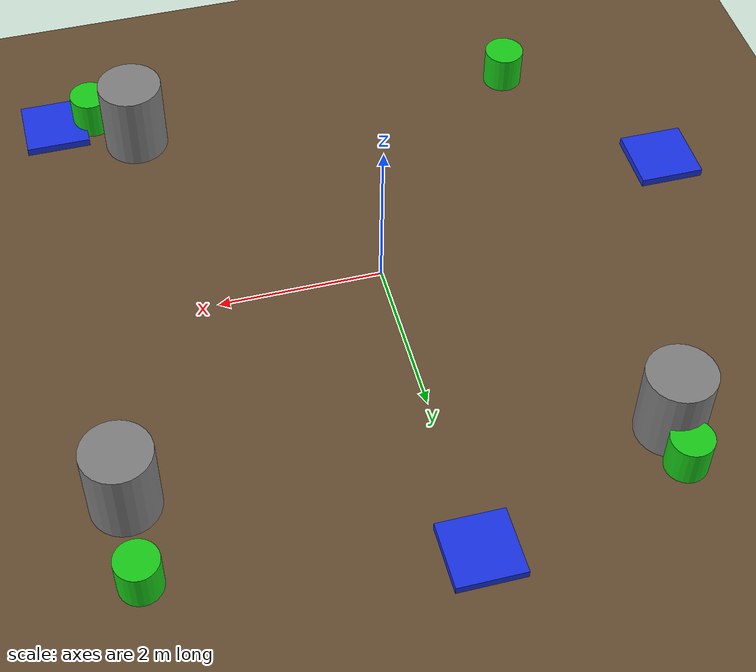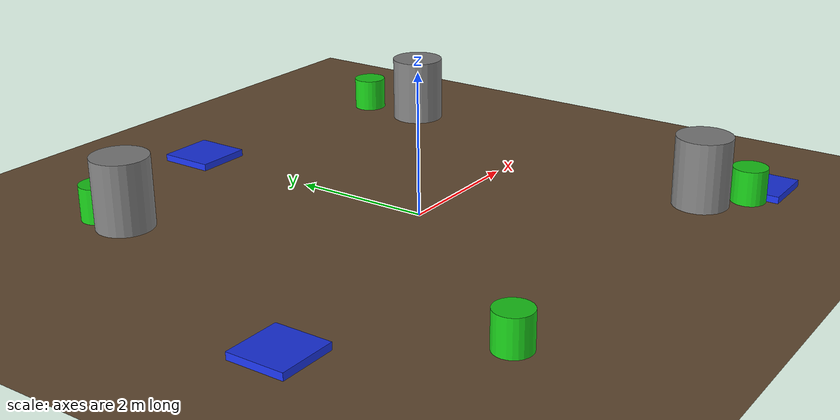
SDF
<sdf version='1.7'>
  <world name='foraging'>

    <light name='sun' type='directional'>
      <pose>0 0 10 0 0 0</pose>
      <diffuse>0.8 0.8 0.8 1</diffuse>
      <specular>0.2 0.2 0.2 1</specular>
      <direction>0 0.1 -0.9</direction>
      <cast_shadows>1</cast_shadows>
    </light>

    <model name='ground_plane'>
      <static>1</static>
      <link name='link'>
        <collision name='collision'>
          <geometry>
            <plane>
              <normal>0 0 1</normal>
              <size>20 20</size>
            </plane>
          </geometry>
        </collision>
        <visual name='visual'>
          <geometry>
            <plane>
              <normal>0 0 1</normal>
              <size>20 20</size>
            </plane>
          </geometry>
          <material>
            <ambient>0.4 0.3 0.2 1</ambient>
            <diffuse>0.4 0.3 0.2 1</diffuse>
          </material>
        </visual>
      </link>
    </model>

    <model name='food_0'>
      <pose>3.5 3.5 0.25 0 0 0</pose>
      <static>1</static>
      <link name='link'>
        <visual name='v'>
          <geometry><cylinder><radius>0.25</radius><length>0.5</length></cylinder></geometry>
          <material>
            <ambient>0.1 0.8 0.1 1</ambient>
            <diffuse>0.1 0.8 0.1 1</diffuse>
          </material>
        </visual>
      </link>
          <plugin name="food_model" filename="NRPGazeboGrpcModelControllerPlugin.so"/>
    </model>

    <model name='food_1'>
      <pose>-2.5 3.5 0.25 0 0 0</pose>
      <static>1</static>
      <link name='link'>
        <visual name='v'>
          <geometry><cylinder><radius>0.25</radius><length>0.5</length></cylinder></geometry>
          <material>
            <ambient>0.1 0.8 0.1 1</ambient>
            <diffuse>0.1 0.8 0.1 1</diffuse>
          </material>
        </visual>
      </link>
          <plugin name="food_model" filename="NRPGazeboGrpcModelControllerPlugin.so"/>
    </model>

    <model name='food_2'>
      <pose>3.0 -3.5 0.25 0 0 0</pose>
      <static>1</static>
      <link name='link'>
        <visual name='v'>
          <geometry><cylinder><radius>0.25</radius><length>0.5</length></cylinder></geometry>
          <material>
            <ambient>0.1 0.8 0.1 1</ambient>
            <diffuse>0.1 0.8 0.1 1</diffuse>
          </material>
        </visual>
      </link>
          <plugin name="food_model" filename="NRPGazeboGrpcModelControllerPlugin.so"/>
    </model>

    <model name='food_3'>
      <pose>-2.5 -3.0 0.25 0 0 0</pose>
      <static>1</static>
      <link name='link'>
        <visual name='v'>
          <geometry><cylinder><radius>0.25</radius><length>0.5</length></cylinder></geometry>
          <material>
            <ambient>0.1 0.8 0.1 1</ambient>
            <diffuse>0.1 0.8 0.1 1</diffuse>
          </material>
        </visual>
      </link>
          <plugin name="food_model" filename="NRPGazeboGrpcModelControllerPlugin.so"/>
    </model>

    <model name='rest_0'>
      <pose>0.0 4.0 0.05 0 0 0</pose>
      <static>1</static>
      <link name='link'>
        <visual name='v'>
          <geometry><box><size>0.8 0.8 0.1</size></box></geometry>
          <material>
            <ambient>0.1 0.2 0.9 1</ambient>
            <diffuse>0.1 0.2 0.9 1</diffuse>
          </material>
        </visual>
      </link>
          <plugin name="rest_model" filename="NRPGazeboGrpcModelControllerPlugin.so"/>
    </model>

    <model name='rest_1'>
      <pose>3.5 -3.5 0.05 0 0 0</pose>
      <static>1</static>
      <link name='link'>
        <visual name='v'>
          <geometry><box><size>0.8 0.8 0.1</size></box></geometry>
          <material>
            <ambient>0.1 0.2 0.9 1</ambient>
            <diffuse>0.1 0.2 0.9 1</diffuse>
          </material>
        </visual>
      </link>
          <plugin name="rest_model" filename="NRPGazeboGrpcModelControllerPlugin.so"/>
    </model>

    <model name='rest_2'>
      <pose>-4.0 -1.0 0.05 0 0 0</pose>
      <static>1</static>
      <link name='link'>
        <visual name='v'>
          <geometry><box><size>0.8 0.8 0.1</size></box></geometry>
          <material>
            <ambient>0.1 0.2 0.9 1</ambient>
            <diffuse>0.1 0.2 0.9 1</diffuse>
          </material>
        </visual>
      </link>
          <plugin name="rest_model" filename="NRPGazeboGrpcModelControllerPlugin.so"/>
    </model>

    <model name='obstacle_0'>
      <pose>2.5 -3.0 0.5 0 0 0</pose>
      <static>1</static>
      <link name='link'>
        <collision name='c'>
          <geometry><cylinder><radius>0.4</radius><length>1.0</length></cylinder></geometry>
        </collision>
        <visual name='v'>
          <geometry><cylinder><radius>0.4</radius><length>1.0</length></cylinder></geometry>
          <material>
            <ambient>0.5 0.5 0.5 1</ambient>
            <diffuse>0.5 0.5 0.5 1</diffuse>
          </material>
        </visual>
      </link>
    </model>

    <model name='obstacle_1'>
      <pose>-2.5 3.0 0.5 0 0 0</pose>
      <static>1</static>
      <link name='link'>
        <collision name='c'>
          <geometry><cylinder><radius>0.4</radius><length>1.0</length></cylinder></geometry>
        </collision>
        <visual name='v'>
          <geometry><cylinder><radius>0.4</radius><length>1.0</length></cylinder></geometry>
          <material>
            <ambient>0.5 0.5 0.5 1</ambient>
            <diffuse>0.5 0.5 0.5 1</diffuse>
          </material>
        </visual>
      </link>
    </model>

    <model name='obstacle_2'>
      <!-- Kept off the straight-line path from origin to food_0 so the
           first eat event can fire even at modest steering accuracy. -->
      <pose>3.5 2.5 0.5 0 0 0</pose>
      <static>1</static>
      <link name='link'>
        <collision name='c'>
          <geometry><cylinder><radius>0.4</radius><length>1.0</length></cylinder></geometry>
        </collision>
        <visual name='v'>
          <geometry><cylinder><radius>0.4</radius><length>1.0</length></cylinder></geometry>
          <material>
            <ambient>0.5 0.5 0.5 1</ambient>
            <diffuse>0.5 0.5 0.5 1</diffuse>
          </material>
        </visual>
      </link>
    </model>

    <physics name='default_physics' default='1' type='ode'>
      <gravity>0 0 -9.81</gravity>
      <max_step_size>0.001</max_step_size>
      <real_time_factor>1</real_time_factor>
      <real_time_update_rate>1000</real_time_update_rate>
    </physics>

    <plugin name='nrp_world' filename='NRPGazeboGrpcWorldPlugin.so'/>

  </world>
</sdf>
